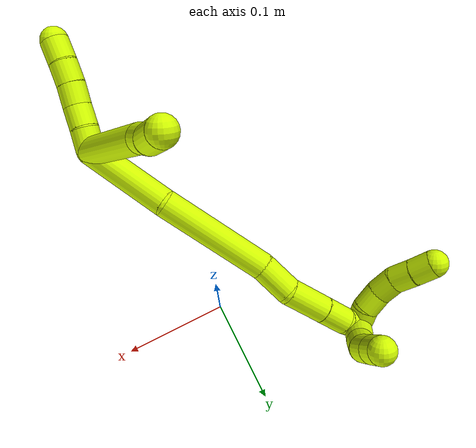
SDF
<sdf version="1.7">
 <world name="default">
  <model name="15">
   <static>0</static>
   <link name="15">
    <collision name="collision-cylinder-e_1_2_8">
     <pose>-0.006973 0.043365 0.01095 -1.32346 -0.154649 0.120548</pose>
     <geometry><cylinder><radius>0.0125</radius><length>0.090533</length></cylinder></geometry>
     <surface>
      <friction><ode><mu>1.16</mu><mu2>1.16</mu2><slip1>0</slip1><slip2>0</slip2></ode></friction>
      <contact><ode><kp>1e+06</kp><kd>1</kd><max_vel>0</max_vel><min_depth>0.001</min_depth></ode></contact>
     </surface>
    </collision>
    <visual name="visual-cylinder-e_1_2_8">
     <pose>-0.006973 0.043365 0.01095 -1.32346 -0.154649 0.120548</pose>
     <geometry><cylinder><radius>0.0125</radius><length>0.090533</length></cylinder></geometry>
     <material><ambient>0.835294 1 0 1</ambient></material>
    </visual>
    <collision name="collision-cylinder-e_2_8_9">
     <pose>-0.012287 0.099624 0.023705 -1.43174 0.126695 -0.110234</pose>
     <geometry><cylinder><radius>0.0125</radius><length>0.026248</length></cylinder></geometry>
     <surface>
      <friction><ode><mu>1.16</mu><mu2>1.16</mu2><slip1>0</slip1><slip2>0</slip2></ode></friction>
      <contact><ode><kp>1e+06</kp><kd>1</kd><max_vel>0</max_vel><min_depth>0.001</min_depth></ode></contact>
     </surface>
    </collision>
    <visual name="visual-cylinder-e_2_8_9">
     <pose>-0.012287 0.099624 0.023705 -1.43174 0.126695 -0.110234</pose>
     <geometry><cylinder><radius>0.0125</radius><length>0.026248</length></cylinder></geometry>
     <material><ambient>0.835294 1 0 1</ambient></material>
    </visual>
    <collision name="collision-cylinder-e_3_9_6">
     <pose>-0.008935 0.128225 0.030633 -1.25551 0.102155 -0.074162</pose>
     <geometry><cylinder><radius>0.0125</radius><length>0.033219</length></cylinder></geometry>
     <surface>
      <friction><ode><mu>1.16</mu><mu2>1.16</mu2><slip1>0</slip1><slip2>0</slip2></ode></friction>
      <contact><ode><kp>1e+06</kp><kd>1</kd><max_vel>0</max_vel><min_depth>0.001</min_depth></ode></contact>
     </surface>
    </collision>
    <visual name="visual-cylinder-e_3_9_6">
     <pose>-0.008935 0.128225 0.030633 -1.25551 0.102155 -0.074162</pose>
     <geometry><cylinder><radius>0.0125</radius><length>0.033219</length></cylinder></geometry>
     <material><ambient>0.835294 1 0 1</ambient></material>
    </visual>
    <collision name="collision-cylinder-e_1_2_10">
     <pose>0.000529 -0.003207 0.009457 0.326964 0.052875 0.008724</pose>
     <geometry><cylinder><radius>0.0125</radius><length>0.02</length></cylinder></geometry>
     <surface>
      <friction><ode><mu>1.16</mu><mu2>1.16</mu2><slip1>0</slip1><slip2>0</slip2></ode></friction>
      <contact><ode><kp>1e+06</kp><kd>1</kd><max_vel>0</max_vel><min_depth>0.001</min_depth></ode></contact>
     </surface>
    </collision>
    <visual name="visual-cylinder-e_1_2_10">
     <pose>0.000529 -0.003207 0.009457 0.326964 0.052875 0.008724</pose>
     <geometry><cylinder><radius>0.0125</radius><length>0.02</length></cylinder></geometry>
     <material><ambient>0.835294 1 0 1</ambient></material>
    </visual>
    <collision name="collision-cylinder-e_2_10_11">
     <pose>0.001492 -0.010907 0.027838 0.466379 0.043493 0.010332</pose>
     <geometry><cylinder><radius>0.0125</radius><length>0.02</length></cylinder></geometry>
     <surface>
      <friction><ode><mu>1.16</mu><mu2>1.16</mu2><slip1>0</slip1><slip2>0</slip2></ode></friction>
      <contact><ode><kp>1e+06</kp><kd>1</kd><max_vel>0</max_vel><min_depth>0.001</min_depth></ode></contact>
     </surface>
    </collision>
    <visual name="visual-cylinder-e_2_10_11">
     <pose>0.001492 -0.010907 0.027838 0.466379 0.043493 0.010332</pose>
     <geometry><cylinder><radius>0.0125</radius><length>0.02</length></cylinder></geometry>
     <material><ambient>0.835294 1 0 1</ambient></material>
    </visual>
    <collision name="collision-cylinder-e_3_11_12">
     <pose>0.002416 -0.018771 0.046163 0.344371 0.048927 0.00851</pose>
     <geometry><cylinder><radius>0.0125</radius><length>0.02</length></cylinder></geometry>
     <surface>
      <friction><ode><mu>1.16</mu><mu2>1.16</mu2><slip1>0</slip1><slip2>0</slip2></ode></friction>
      <contact><ode><kp>1e+06</kp><kd>1</kd><max_vel>0</max_vel><min_depth>0.001</min_depth></ode></contact>
     </surface>
    </collision>
    <visual name="visual-cylinder-e_3_11_12">
     <pose>0.002416 -0.018771 0.046163 0.344371 0.048927 0.00851</pose>
     <geometry><cylinder><radius>0.0125</radius><length>0.02</length></cylinder></geometry>
     <material><ambient>0.835294 1 0 1</ambient></material>
    </visual>
    <collision name="collision-cylinder-e_4_12_13">
     <pose>0.004137 -0.025676 0.064838 0.364033 0.123528 0.022764</pose>
     <geometry><cylinder><radius>0.0125</radius><length>0.02</length></cylinder></geometry>
     <surface>
      <friction><ode><mu>1.16</mu><mu2>1.16</mu2><slip1>0</slip1><slip2>0</slip2></ode></friction>
      <contact><ode><kp>1e+06</kp><kd>1</kd><max_vel>0</max_vel><min_depth>0.001</min_depth></ode></contact>
     </surface>
    </collision>
    <visual name="visual-cylinder-e_4_12_13">
     <pose>0.004137 -0.025676 0.064838 0.364033 0.123528 0.022764</pose>
     <geometry><cylinder><radius>0.0125</radius><length>0.02</length></cylinder></geometry>
     <material><ambient>0.835294 1 0 1</ambient></material>
    </visual>
    <collision name="collision-cylinder-e_5_13_5">
     <pose>0.006554 -0.033618 0.083009 0.459976 0.118773 0.027839</pose>
     <geometry><cylinder><radius>0.0125</radius><length>0.02</length></cylinder></geometry>
     <surface>
      <friction><ode><mu>1.16</mu><mu2>1.16</mu2><slip1>0</slip1><slip2>0</slip2></ode></friction>
      <contact><ode><kp>1e+06</kp><kd>1</kd><max_vel>0</max_vel><min_depth>0.001</min_depth></ode></contact>
     </surface>
    </collision>
    <visual name="visual-cylinder-e_5_13_5">
     <pose>0.006554 -0.033618 0.083009 0.459976 0.118773 0.027839</pose>
     <geometry><cylinder><radius>0.0125</radius><length>0.02</length></cylinder></geometry>
     <material><ambient>0.835294 1 0 1</ambient></material>
    </visual>
    <collision name="collision-cylinder-e_1_2_14">
     <pose>-0.021358 0.025823 -0.021791 -2.27171 -0.56369 1.11462</pose>
     <geometry><cylinder><radius>0.0125</radius><length>0.079945</length></cylinder></geometry>
     <surface>
      <friction><ode><mu>1.16</mu><mu2>1.16</mu2><slip1>0</slip1><slip2>0</slip2></ode></friction>
      <contact><ode><kp>1e+06</kp><kd>1</kd><max_vel>0</max_vel><min_depth>0.001</min_depth></ode></contact>
     </surface>
    </collision>
    <visual name="visual-cylinder-e_1_2_14">
     <pose>-0.021358 0.025823 -0.021791 -2.27171 -0.56369 1.11462</pose>
     <geometry><cylinder><radius>0.0125</radius><length>0.079945</length></cylinder></geometry>
     <material><ambient>0.835294 1 0 1</ambient></material>
    </visual>
    <collision name="collision-cylinder-e_2_14_15">
     <pose>-0.077844 0.072504 -0.075253 -2.55922 -0.747158 1.83606</pose>
     <geometry><cylinder><radius>0.0125</radius><length>0.103386</length></cylinder></geometry>
     <surface>
      <friction><ode><mu>1.16</mu><mu2>1.16</mu2><slip1>0</slip1><slip2>0</slip2></ode></friction>
      <contact><ode><kp>1e+06</kp><kd>1</kd><max_vel>0</max_vel><min_depth>0.001</min_depth></ode></contact>
     </surface>
    </collision>
    <visual name="visual-cylinder-e_2_14_15">
     <pose>-0.077844 0.072504 -0.075253 -2.55922 -0.747158 1.83606</pose>
     <geometry><cylinder><radius>0.0125</radius><length>0.103386</length></cylinder></geometry>
     <material><ambient>0.835294 1 0 1</ambient></material>
    </visual>
    <collision name="collision-cylinder-e_3_15_16">
     <pose>-0.121159 0.101451 -0.118314 -2.52401 -0.530085 1.41001</pose>
     <geometry><cylinder><radius>0.0125</radius><length>0.032383</length></cylinder></geometry>
     <surface>
      <friction><ode><mu>1.16</mu><mu2>1.16</mu2><slip1>0</slip1><slip2>0</slip2></ode></friction>
      <contact><ode><kp>1e+06</kp><kd>1</kd><max_vel>0</max_vel><min_depth>0.001</min_depth></ode></contact>
     </surface>
    </collision>
    <visual name="visual-cylinder-e_3_15_16">
     <pose>-0.121159 0.101451 -0.118314 -2.52401 -0.530085 1.41001</pose>
     <geometry><cylinder><radius>0.0125</radius><length>0.032383</length></cylinder></geometry>
     <material><ambient>0.835294 1 0 1</ambient></material>
    </visual>
    <collision name="collision-cylinder-e_4_16_17">
     <pose>-0.14403 0.115368 -0.140841 -2.65956 -0.862812 2.1607</pose>
     <geometry><cylinder><radius>0.0125</radius><length>0.038663</length></cylinder></geometry>
     <surface>
      <friction><ode><mu>1.16</mu><mu2>1.16</mu2><slip1>0</slip1><slip2>0</slip2></ode></friction>
      <contact><ode><kp>1e+06</kp><kd>1</kd><max_vel>0</max_vel><min_depth>0.001</min_depth></ode></contact>
     </surface>
    </collision>
    <visual name="visual-cylinder-e_4_16_17">
     <pose>-0.14403 0.115368 -0.140841 -2.65956 -0.862812 2.1607</pose>
     <geometry><cylinder><radius>0.0125</radius><length>0.038663</length></cylinder></geometry>
     <material><ambient>0.835294 1 0 1</ambient></material>
    </visual>
    <collision name="collision-cylinder-e_5_17_18">
     <pose>-0.168534 0.124446 -0.159498 -2.73348 -0.875541 2.30904</pose>
     <geometry><cylinder><radius>0.0125</radius><length>0.025571</length></cylinder></geometry>
     <surface>
      <friction><ode><mu>1.16</mu><mu2>1.16</mu2><slip1>0</slip1><slip2>0</slip2></ode></friction>
      <contact><ode><kp>1e+06</kp><kd>1</kd><max_vel>0</max_vel><min_depth>0.001</min_depth></ode></contact>
     </surface>
    </collision>
    <visual name="visual-cylinder-e_5_17_18">
     <pose>-0.168534 0.124446 -0.159498 -2.73348 -0.875541 2.30904</pose>
     <geometry><cylinder><radius>0.0125</radius><length>0.025571</length></cylinder></geometry>
     <material><ambient>0.835294 1 0 1</ambient></material>
    </visual>
    <collision name="collision-cylinder-e_6_18_1">
     <pose>-0.186888 0.127075 -0.172237 3.02307 -1.01873 -2.92994</pose>
     <geometry><cylinder><radius>0.0125</radius><length>0.020053</length></cylinder></geometry>
     <surface>
      <friction><ode><mu>1.16</mu><mu2>1.16</mu2><slip1>0</slip1><slip2>0</slip2></ode></friction>
      <contact><ode><kp>1e+06</kp><kd>1</kd><max_vel>0</max_vel><min_depth>0.001</min_depth></ode></contact>
     </surface>
    </collision>
    <visual name="visual-cylinder-e_6_18_1">
     <pose>-0.186888 0.127075 -0.172237 3.02307 -1.01873 -2.92994</pose>
     <geometry><cylinder><radius>0.0125</radius><length>0.020053</length></cylinder></geometry>
     <material><ambient>0.835294 1 0 1</ambient></material>
    </visual>
    <collision name="collision-cylinder-e_1_1_19">
     <pose>-0.185915 0.139268 -0.176955 -1.53155 0.638072 -0.615055</pose>
     <geometry><cylinder><radius>0.0125</radius><length>0.031933</length></cylinder></geometry>
     <surface>
      <friction><ode><mu>1.16</mu><mu2>1.16</mu2><slip1>0</slip1><slip2>0</slip2></ode></friction>
      <contact><ode><kp>1e+06</kp><kd>1</kd><max_vel>0</max_vel><min_depth>0.001</min_depth></ode></contact>
     </surface>
    </collision>
    <visual name="visual-cylinder-e_1_1_19">
     <pose>-0.185915 0.139268 -0.176955 -1.53155 0.638072 -0.615055</pose>
     <geometry><cylinder><radius>0.0125</radius><length>0.031933</length></cylinder></geometry>
     <material><ambient>0.835294 1 0 1</ambient></material>
    </visual>
    <collision name="collision-cylinder-e_2_19_20">
     <pose>-0.17029 0.160821 -0.173821 -1.27832 0.590381 -0.444531</pose>
     <geometry><cylinder><radius>0.0125</radius><length>0.021968</length></cylinder></geometry>
     <surface>
      <friction><ode><mu>1.16</mu><mu2>1.16</mu2><slip1>0</slip1><slip2>0</slip2></ode></friction>
      <contact><ode><kp>1e+06</kp><kd>1</kd><max_vel>0</max_vel><min_depth>0.001</min_depth></ode></contact>
     </surface>
    </collision>
    <visual name="visual-cylinder-e_2_19_20">
     <pose>-0.17029 0.160821 -0.173821 -1.27832 0.590381 -0.444531</pose>
     <geometry><cylinder><radius>0.0125</radius><length>0.021968</length></cylinder></geometry>
     <material><ambient>0.835294 1 0 1</ambient></material>
    </visual>
    <collision name="collision-cylinder-e_3_20_21">
     <pose>-0.160274 0.179842 -0.165653 -1.07694 0.322393 -0.193661</pose>
     <geometry><cylinder><radius>0.0125</radius><length>0.024629</length></cylinder></geometry>
     <surface>
      <friction><ode><mu>1.16</mu><mu2>1.16</mu2><slip1>0</slip1><slip2>0</slip2></ode></friction>
      <contact><ode><kp>1e+06</kp><kd>1</kd><max_vel>0</max_vel><min_depth>0.001</min_depth></ode></contact>
     </surface>
    </collision>
    <visual name="visual-cylinder-e_3_20_21">
     <pose>-0.160274 0.179842 -0.165653 -1.07694 0.322393 -0.193661</pose>
     <geometry><cylinder><radius>0.0125</radius><length>0.024629</length></cylinder></geometry>
     <material><ambient>0.835294 1 0 1</ambient></material>
    </visual>
    <collision name="collision-cylinder-e_4_21_4">
     <pose>-0.153028 0.19903 -0.155138 -1.06099 0.31684 -0.186877</pose>
     <geometry><cylinder><radius>0.0125</radius><length>0.02147</length></cylinder></geometry>
     <surface>
      <friction><ode><mu>1.16</mu><mu2>1.16</mu2><slip1>0</slip1><slip2>0</slip2></ode></friction>
      <contact><ode><kp>1e+06</kp><kd>1</kd><max_vel>0</max_vel><min_depth>0.001</min_depth></ode></contact>
     </surface>
    </collision>
    <visual name="visual-cylinder-e_4_21_4">
     <pose>-0.153028 0.19903 -0.155138 -1.06099 0.31684 -0.186877</pose>
     <geometry><cylinder><radius>0.0125</radius><length>0.02147</length></cylinder></geometry>
     <material><ambient>0.835294 1 0 1</ambient></material>
    </visual>
    <collision name="collision-cylinder-e_1_1_22">
     <pose>-0.197759 0.129019 -0.168079 -0.267049 -0.235505 0.031778</pose>
     <geometry><cylinder><radius>0.0125</radius><length>0.02</length></cylinder></geometry>
     <surface>
      <friction><ode><mu>1.16</mu><mu2>1.16</mu2><slip1>0</slip1><slip2>0</slip2></ode></friction>
      <contact><ode><kp>1e+06</kp><kd>1</kd><max_vel>0</max_vel><min_depth>0.001</min_depth></ode></contact>
     </surface>
    </collision>
    <visual name="visual-cylinder-e_1_1_22">
     <pose>-0.197759 0.129019 -0.168079 -0.267049 -0.235505 0.031778</pose>
     <geometry><cylinder><radius>0.0125</radius><length>0.02</length></cylinder></geometry>
     <material><ambient>0.835294 1 0 1</ambient></material>
    </visual>
    <collision name="collision-cylinder-e_2_22_23">
     <pose>-0.205074 0.134954 -0.150709 -0.398935 -0.521465 0.107768</pose>
     <geometry><cylinder><radius>0.0125</radius><length>0.02</length></cylinder></geometry>
     <surface>
      <friction><ode><mu>1.16</mu><mu2>1.16</mu2><slip1>0</slip1><slip2>0</slip2></ode></friction>
      <contact><ode><kp>1e+06</kp><kd>1</kd><max_vel>0</max_vel><min_depth>0.001</min_depth></ode></contact>
     </surface>
    </collision>
    <visual name="visual-cylinder-e_2_22_23">
     <pose>-0.205074 0.134954 -0.150709 -0.398935 -0.521465 0.107768</pose>
     <geometry><cylinder><radius>0.0125</radius><length>0.02</length></cylinder></geometry>
     <material><ambient>0.835294 1 0 1</ambient></material>
    </visual>
    <collision name="collision-cylinder-e_3_23_24">
     <pose>-0.214331 0.143857 -0.135573 -0.659078 -0.441818 0.153312</pose>
     <geometry><cylinder><radius>0.0125</radius><length>0.02</length></cylinder></geometry>
     <surface>
      <friction><ode><mu>1.16</mu><mu2>1.16</mu2><slip1>0</slip1><slip2>0</slip2></ode></friction>
      <contact><ode><kp>1e+06</kp><kd>1</kd><max_vel>0</max_vel><min_depth>0.001</min_depth></ode></contact>
     </surface>
    </collision>
    <visual name="visual-cylinder-e_3_23_24">
     <pose>-0.214331 0.143857 -0.135573 -0.659078 -0.441818 0.153312</pose>
     <geometry><cylinder><radius>0.0125</radius><length>0.02</length></cylinder></geometry>
     <material><ambient>0.835294 1 0 1</ambient></material>
    </visual>
    <collision name="collision-cylinder-e_4_24_25">
     <pose>-0.222905 0.156858 -0.123346 -0.973199 -0.444273 0.237849</pose>
     <geometry><cylinder><radius>0.0125</radius><length>0.02</length></cylinder></geometry>
     <surface>
      <friction><ode><mu>1.16</mu><mu2>1.16</mu2><slip1>0</slip1><slip2>0</slip2></ode></friction>
      <contact><ode><kp>1e+06</kp><kd>1</kd><max_vel>0</max_vel><min_depth>0.001</min_depth></ode></contact>
     </surface>
    </collision>
    <visual name="visual-cylinder-e_4_24_25">
     <pose>-0.222905 0.156858 -0.123346 -0.973199 -0.444273 0.237849</pose>
     <geometry><cylinder><radius>0.0125</radius><length>0.02</length></cylinder></geometry>
     <material><ambient>0.835294 1 0 1</ambient></material>
    </visual>
    <collision name="collision-cylinder-e_5_25_3">
     <pose>-0.231883 0.171376 -0.112943 -0.924349 -0.487089 0.246309</pose>
     <geometry><cylinder><radius>0.0125</radius><length>0.02</length></cylinder></geometry>
     <surface>
      <friction><ode><mu>1.16</mu><mu2>1.16</mu2><slip1>0</slip1><slip2>0</slip2></ode></friction>
      <contact><ode><kp>1e+06</kp><kd>1</kd><max_vel>0</max_vel><min_depth>0.001</min_depth></ode></contact>
     </surface>
    </collision>
    <visual name="visual-cylinder-e_5_25_3">
     <pose>-0.231883 0.171376 -0.112943 -0.924349 -0.487089 0.246309</pose>
     <geometry><cylinder><radius>0.0125</radius><length>0.02</length></cylinder></geometry>
     <material><ambient>0.835294 1 0 1</ambient></material>
    </visual>
    <collision name="collision-sphere-3">
     <pose>-0.236564 0.17843 -0.10762 0 -0 0</pose>
     <geometry><sphere><radius>0.0125</radius></sphere></geometry>
     <surface>
      <friction><ode><mu>1.16</mu><mu2>1.16</mu2><slip1>0</slip1><slip2>0</slip2></ode></friction>
      <contact><ode><kp>1e+06</kp><kd>1</kd><max_vel>0</max_vel><min_depth>0.001</min_depth></ode></contact>
     </surface>
    </collision>
    <visual name="visual-sphere-3">
     <pose>-0.236564 0.17843 -0.10762 0 -0 0</pose>
     <geometry><sphere><radius>0.0125</radius></sphere></geometry>
     <material><ambient>0.835294 1 0 1</ambient></material>
    </visual>
    <collision name="collision-sphere-25">
     <pose>-0.227203 0.164322 -0.118266 0 -0 0</pose>
     <geometry><sphere><radius>0.0125</radius></sphere></geometry>
     <surface>
      <friction><ode><mu>1.16</mu><mu2>1.16</mu2><slip1>0</slip1><slip2>0</slip2></ode></friction>
      <contact><ode><kp>1e+06</kp><kd>1</kd><max_vel>0</max_vel><min_depth>0.001</min_depth></ode></contact>
     </surface>
    </collision>
    <visual name="visual-sphere-25">
     <pose>-0.227203 0.164322 -0.118266 0 -0 0</pose>
     <geometry><sphere><radius>0.0125</radius></sphere></geometry>
     <material><ambient>0.835294 1 0 1</ambient></material>
    </visual>
    <collision name="collision-sphere-24">
     <pose>-0.218607 0.149393 -0.128426 0 -0 0</pose>
     <geometry><sphere><radius>0.0125</radius></sphere></geometry>
     <surface>
      <friction><ode><mu>1.16</mu><mu2>1.16</mu2><slip1>0</slip1><slip2>0</slip2></ode></friction>
      <contact><ode><kp>1e+06</kp><kd>1</kd><max_vel>0</max_vel><min_depth>0.001</min_depth></ode></contact>
     </surface>
    </collision>
    <visual name="visual-sphere-24">
     <pose>-0.218607 0.149393 -0.128426 0 -0 0</pose>
     <geometry><sphere><radius>0.0125</radius></sphere></geometry>
     <material><ambient>0.835294 1 0 1</ambient></material>
    </visual>
    <collision name="collision-sphere-23">
     <pose>-0.210055 0.138322 -0.142719 0 -0 0</pose>
     <geometry><sphere><radius>0.0125</radius></sphere></geometry>
     <surface>
      <friction><ode><mu>1.16</mu><mu2>1.16</mu2><slip1>0</slip1><slip2>0</slip2></ode></friction>
      <contact><ode><kp>1e+06</kp><kd>1</kd><max_vel>0</max_vel><min_depth>0.001</min_depth></ode></contact>
     </surface>
    </collision>
    <visual name="visual-sphere-23">
     <pose>-0.210055 0.138322 -0.142719 0 -0 0</pose>
     <geometry><sphere><radius>0.0125</radius></sphere></geometry>
     <material><ambient>0.835294 1 0 1</ambient></material>
    </visual>
    <collision name="collision-sphere-22">
     <pose>-0.200092 0.131585 -0.158699 0 -0 0</pose>
     <geometry><sphere><radius>0.0125</radius></sphere></geometry>
     <surface>
      <friction><ode><mu>1.16</mu><mu2>1.16</mu2><slip1>0</slip1><slip2>0</slip2></ode></friction>
      <contact><ode><kp>1e+06</kp><kd>1</kd><max_vel>0</max_vel><min_depth>0.001</min_depth></ode></contact>
     </surface>
    </collision>
    <visual name="visual-sphere-22">
     <pose>-0.200092 0.131585 -0.158699 0 -0 0</pose>
     <geometry><sphere><radius>0.0125</radius></sphere></geometry>
     <material><ambient>0.835294 1 0 1</ambient></material>
    </visual>
    <collision name="collision-sphere-4">
     <pose>-0.149683 0.207934 -0.15016 0 -0 0</pose>
     <geometry><sphere><radius>0.0125</radius></sphere></geometry>
     <surface>
      <friction><ode><mu>1.16</mu><mu2>1.16</mu2><slip1>0</slip1><slip2>0</slip2></ode></friction>
      <contact><ode><kp>1e+06</kp><kd>1</kd><max_vel>0</max_vel><min_depth>0.001</min_depth></ode></contact>
     </surface>
    </collision>
    <visual name="visual-sphere-4">
     <pose>-0.149683 0.207934 -0.15016 0 -0 0</pose>
     <geometry><sphere><radius>0.0125</radius></sphere></geometry>
     <material><ambient>0.835294 1 0 1</ambient></material>
    </visual>
    <collision name="collision-sphere-21">
     <pose>-0.156372 0.190127 -0.160116 0 -0 0</pose>
     <geometry><sphere><radius>0.0125</radius></sphere></geometry>
     <surface>
      <friction><ode><mu>1.16</mu><mu2>1.16</mu2><slip1>0</slip1><slip2>0</slip2></ode></friction>
      <contact><ode><kp>1e+06</kp><kd>1</kd><max_vel>0</max_vel><min_depth>0.001</min_depth></ode></contact>
     </surface>
    </collision>
    <visual name="visual-sphere-21">
     <pose>-0.156372 0.190127 -0.160116 0 -0 0</pose>
     <geometry><sphere><radius>0.0125</radius></sphere></geometry>
     <material><ambient>0.835294 1 0 1</ambient></material>
    </visual>
    <collision name="collision-sphere-20">
     <pose>-0.164176 0.169558 -0.17119 0 -0 0</pose>
     <geometry><sphere><radius>0.0125</radius></sphere></geometry>
     <surface>
      <friction><ode><mu>1.16</mu><mu2>1.16</mu2><slip1>0</slip1><slip2>0</slip2></ode></friction>
      <contact><ode><kp>1e+06</kp><kd>1</kd><max_vel>0</max_vel><min_depth>0.001</min_depth></ode></contact>
     </surface>
    </collision>
    <visual name="visual-sphere-20">
     <pose>-0.164176 0.169558 -0.17119 0 -0 0</pose>
     <geometry><sphere><radius>0.0125</radius></sphere></geometry>
     <material><ambient>0.835294 1 0 1</ambient></material>
    </visual>
    <collision name="collision-sphere-11">
     <pose>0.001927 -0.015399 0.036761 0 -0 0</pose>
     <geometry><sphere><radius>0.0125</radius></sphere></geometry>
     <surface>
      <friction><ode><mu>1.16</mu><mu2>1.16</mu2><slip1>0</slip1><slip2>0</slip2></ode></friction>
      <contact><ode><kp>1e+06</kp><kd>1</kd><max_vel>0</max_vel><min_depth>0.001</min_depth></ode></contact>
     </surface>
    </collision>
    <visual name="visual-sphere-11">
     <pose>0.001927 -0.015399 0.036761 0 -0 0</pose>
     <geometry><sphere><radius>0.0125</radius></sphere></geometry>
     <material><ambient>0.835294 1 0 1</ambient></material>
    </visual>
    <collision name="collision-sphere-10">
     <pose>0.001057 -0.006414 0.018914 0 -0 0</pose>
     <geometry><sphere><radius>0.0125</radius></sphere></geometry>
     <surface>
      <friction><ode><mu>1.16</mu><mu2>1.16</mu2><slip1>0</slip1><slip2>0</slip2></ode></friction>
      <contact><ode><kp>1e+06</kp><kd>1</kd><max_vel>0</max_vel><min_depth>0.001</min_depth></ode></contact>
     </surface>
    </collision>
    <visual name="visual-sphere-10">
     <pose>0.001057 -0.006414 0.018914 0 -0 0</pose>
     <geometry><sphere><radius>0.0125</radius></sphere></geometry>
     <material><ambient>0.835294 1 0 1</ambient></material>
    </visual>
    <collision name="collision-sphere-6">
     <pose>-0.007241 0.143934 0.035756 0 -0 0</pose>
     <geometry><sphere><radius>0.0125</radius></sphere></geometry>
     <surface>
      <friction><ode><mu>1.16</mu><mu2>1.16</mu2><slip1>0</slip1><slip2>0</slip2></ode></friction>
      <contact><ode><kp>1e+06</kp><kd>1</kd><max_vel>0</max_vel><min_depth>0.001</min_depth></ode></contact>
     </surface>
    </collision>
    <visual name="visual-sphere-6">
     <pose>-0.007241 0.143934 0.035756 0 -0 0</pose>
     <geometry><sphere><radius>0.0125</radius></sphere></geometry>
     <material><ambient>0.835294 1 0 1</ambient></material>
    </visual>
    <collision name="collision-sphere-9">
     <pose>-0.010628 0.112517 0.025509 0 -0 0</pose>
     <geometry><sphere><radius>0.0125</radius></sphere></geometry>
     <surface>
      <friction><ode><mu>1.16</mu><mu2>1.16</mu2><slip1>0</slip1><slip2>0</slip2></ode></friction>
      <contact><ode><kp>1e+06</kp><kd>1</kd><max_vel>0</max_vel><min_depth>0.001</min_depth></ode></contact>
     </surface>
    </collision>
    <visual name="visual-sphere-9">
     <pose>-0.010628 0.112517 0.025509 0 -0 0</pose>
     <geometry><sphere><radius>0.0125</radius></sphere></geometry>
     <material><ambient>0.835294 1 0 1</ambient></material>
    </visual>
    <collision name="collision-sphere-2">
     <geometry><sphere><radius>0.0125</radius></sphere></geometry>
     <surface>
      <friction><ode><mu>1.16</mu><mu2>1.16</mu2><slip1>0</slip1><slip2>0</slip2></ode></friction>
      <contact><ode><kp>1e+06</kp><kd>1</kd><max_vel>0</max_vel><min_depth>0.001</min_depth></ode></contact>
     </surface>
    </collision>
    <visual name="visual-sphere-2">
     <geometry><sphere><radius>0.0125</radius></sphere></geometry>
     <material><ambient>0.835294 1 0 1</ambient></material>
    </visual>
    <collision name="collision-sphere-19">
     <pose>-0.176405 0.152083 -0.176452 0 -0 0</pose>
     <geometry><sphere><radius>0.0125</radius></sphere></geometry>
     <surface>
      <friction><ode><mu>1.16</mu><mu2>1.16</mu2><slip1>0</slip1><slip2>0</slip2></ode></friction>
      <contact><ode><kp>1e+06</kp><kd>1</kd><max_vel>0</max_vel><min_depth>0.001</min_depth></ode></contact>
     </surface>
    </collision>
    <visual name="visual-sphere-19">
     <pose>-0.176405 0.152083 -0.176452 0 -0 0</pose>
     <geometry><sphere><radius>0.0125</radius></sphere></geometry>
     <material><ambient>0.835294 1 0 1</ambient></material>
    </visual>
    <collision name="collision-sphere-8">
     <pose>-0.013945 0.08673 0.0219 0 -0 0</pose>
     <geometry><sphere><radius>0.0125</radius></sphere></geometry>
     <surface>
      <friction><ode><mu>1.16</mu><mu2>1.16</mu2><slip1>0</slip1><slip2>0</slip2></ode></friction>
      <contact><ode><kp>1e+06</kp><kd>1</kd><max_vel>0</max_vel><min_depth>0.001</min_depth></ode></contact>
     </surface>
    </collision>
    <visual name="visual-sphere-8">
     <pose>-0.013945 0.08673 0.0219 0 -0 0</pose>
     <geometry><sphere><radius>0.0125</radius></sphere></geometry>
     <material><ambient>0.835294 1 0 1</ambient></material>
    </visual>
    <collision name="collision-sphere-12">
     <pose>0.002905 -0.022143 0.055564 0 -0 0</pose>
     <geometry><sphere><radius>0.0125</radius></sphere></geometry>
     <surface>
      <friction><ode><mu>1.16</mu><mu2>1.16</mu2><slip1>0</slip1><slip2>0</slip2></ode></friction>
      <contact><ode><kp>1e+06</kp><kd>1</kd><max_vel>0</max_vel><min_depth>0.001</min_depth></ode></contact>
     </surface>
    </collision>
    <visual name="visual-sphere-12">
     <pose>0.002905 -0.022143 0.055564 0 -0 0</pose>
     <geometry><sphere><radius>0.0125</radius></sphere></geometry>
     <material><ambient>0.835294 1 0 1</ambient></material>
    </visual>
    <collision name="collision-sphere-13">
     <pose>0.005369 -0.02921 0.074111 0 -0 0</pose>
     <geometry><sphere><radius>0.0125</radius></sphere></geometry>
     <surface>
      <friction><ode><mu>1.16</mu><mu2>1.16</mu2><slip1>0</slip1><slip2>0</slip2></ode></friction>
      <contact><ode><kp>1e+06</kp><kd>1</kd><max_vel>0</max_vel><min_depth>0.001</min_depth></ode></contact>
     </surface>
    </collision>
    <visual name="visual-sphere-13">
     <pose>0.005369 -0.02921 0.074111 0 -0 0</pose>
     <geometry><sphere><radius>0.0125</radius></sphere></geometry>
     <material><ambient>0.835294 1 0 1</ambient></material>
    </visual>
    <collision name="collision-sphere-5">
     <pose>0.007739 -0.038026 0.091906 0 -0 0</pose>
     <geometry><sphere><radius>0.0125</radius></sphere></geometry>
     <surface>
      <friction><ode><mu>1.16</mu><mu2>1.16</mu2><slip1>0</slip1><slip2>0</slip2></ode></friction>
      <contact><ode><kp>1e+06</kp><kd>1</kd><max_vel>0</max_vel><min_depth>0.001</min_depth></ode></contact>
     </surface>
    </collision>
    <visual name="visual-sphere-5">
     <pose>0.007739 -0.038026 0.091906 0 -0 0</pose>
     <geometry><sphere><radius>0.0125</radius></sphere></geometry>
     <material><ambient>0.835294 1 0 1</ambient></material>
    </visual>
    <collision name="collision-sphere-14">
     <pose>-0.042715 0.051646 -0.043581 0 -0 0</pose>
     <geometry><sphere><radius>0.0125</radius></sphere></geometry>
     <surface>
      <friction><ode><mu>1.16</mu><mu2>1.16</mu2><slip1>0</slip1><slip2>0</slip2></ode></friction>
      <contact><ode><kp>1e+06</kp><kd>1</kd><max_vel>0</max_vel><min_depth>0.001</min_depth></ode></contact>
     </surface>
    </collision>
    <visual name="visual-sphere-14">
     <pose>-0.042715 0.051646 -0.043581 0 -0 0</pose>
     <geometry><sphere><radius>0.0125</radius></sphere></geometry>
     <material><ambient>0.835294 1 0 1</ambient></material>
    </visual>
    <collision name="collision-sphere-15">
     <pose>-0.112972 0.093362 -0.106925 0 -0 0</pose>
     <geometry><sphere><radius>0.0125</radius></sphere></geometry>
     <surface>
      <friction><ode><mu>1.16</mu><mu2>1.16</mu2><slip1>0</slip1><slip2>0</slip2></ode></friction>
      <contact><ode><kp>1e+06</kp><kd>1</kd><max_vel>0</max_vel><min_depth>0.001</min_depth></ode></contact>
     </surface>
    </collision>
    <visual name="visual-sphere-15">
     <pose>-0.112972 0.093362 -0.106925 0 -0 0</pose>
     <geometry><sphere><radius>0.0125</radius></sphere></geometry>
     <material><ambient>0.835294 1 0 1</ambient></material>
    </visual>
    <collision name="collision-sphere-16">
     <pose>-0.129345 0.10954 -0.129703 0 -0 0</pose>
     <geometry><sphere><radius>0.0125</radius></sphere></geometry>
     <surface>
      <friction><ode><mu>1.16</mu><mu2>1.16</mu2><slip1>0</slip1><slip2>0</slip2></ode></friction>
      <contact><ode><kp>1e+06</kp><kd>1</kd><max_vel>0</max_vel><min_depth>0.001</min_depth></ode></contact>
     </surface>
    </collision>
    <visual name="visual-sphere-16">
     <pose>-0.129345 0.10954 -0.129703 0 -0 0</pose>
     <geometry><sphere><radius>0.0125</radius></sphere></geometry>
     <material><ambient>0.835294 1 0 1</ambient></material>
    </visual>
    <collision name="collision-sphere-17">
     <pose>-0.158716 0.121196 -0.15198 0 -0 0</pose>
     <geometry><sphere><radius>0.0125</radius></sphere></geometry>
     <surface>
      <friction><ode><mu>1.16</mu><mu2>1.16</mu2><slip1>0</slip1><slip2>0</slip2></ode></friction>
      <contact><ode><kp>1e+06</kp><kd>1</kd><max_vel>0</max_vel><min_depth>0.001</min_depth></ode></contact>
     </surface>
    </collision>
    <visual name="visual-sphere-17">
     <pose>-0.158716 0.121196 -0.15198 0 -0 0</pose>
     <geometry><sphere><radius>0.0125</radius></sphere></geometry>
     <material><ambient>0.835294 1 0 1</ambient></material>
    </visual>
    <collision name="collision-sphere-18">
     <pose>-0.178352 0.127697 -0.167015 0 -0 0</pose>
     <geometry><sphere><radius>0.0125</radius></sphere></geometry>
     <surface>
      <friction><ode><mu>1.16</mu><mu2>1.16</mu2><slip1>0</slip1><slip2>0</slip2></ode></friction>
      <contact><ode><kp>1e+06</kp><kd>1</kd><max_vel>0</max_vel><min_depth>0.001</min_depth></ode></contact>
     </surface>
    </collision>
    <visual name="visual-sphere-18">
     <pose>-0.178352 0.127697 -0.167015 0 -0 0</pose>
     <geometry><sphere><radius>0.0125</radius></sphere></geometry>
     <material><ambient>0.835294 1 0 1</ambient></material>
    </visual>
    <collision name="collision-sphere-1">
     <pose>-0.195425 0.126453 -0.177458 0 -0 0</pose>
     <geometry><sphere><radius>0.0125</radius></sphere></geometry>
     <surface>
      <friction><ode><mu>1.16</mu><mu2>1.16</mu2><slip1>0</slip1><slip2>0</slip2></ode></friction>
      <contact><ode><kp>1e+06</kp><kd>1</kd><max_vel>0</max_vel><min_depth>0.001</min_depth></ode></contact>
     </surface>
    </collision>
    <visual name="visual-sphere-1">
     <pose>-0.195425 0.126453 -0.177458 0 -0 0</pose>
     <geometry><sphere><radius>0.0125</radius></sphere></geometry>
     <material><ambient>0.835294 1 0 1</ambient></material>
    </visual>
    <inertial>
     <pose>-0.088803 0.08453 -0.066356 0 -0 0</pose>
     <mass>0.75</mass>
     <inertia><ixx>0.000188</ixx><ixy>0</ixy><ixz>0</ixz><iyy>0.000249</iyy><iyz>0</iyz><izz>-4e-05</izz></inertia>
    </inertial>
   </link>
   <pose>0.047639 -0.146269 0.140772 0.84253 -0.391955 -0.079904</pose>
  </model>
 </world>
</sdf>
